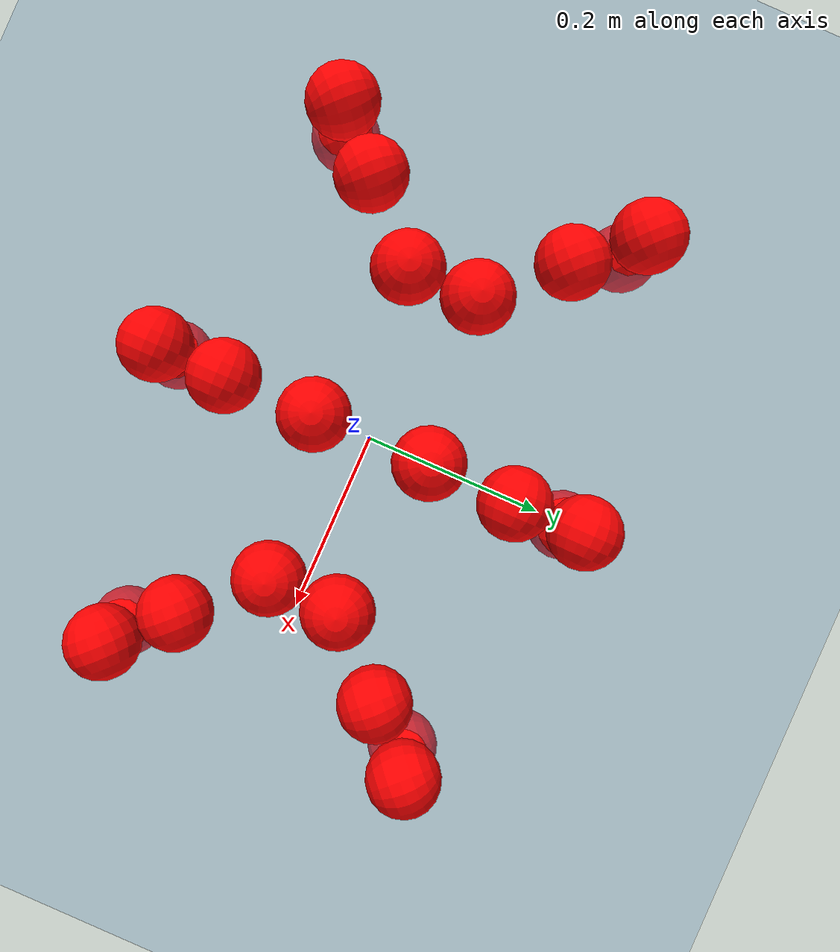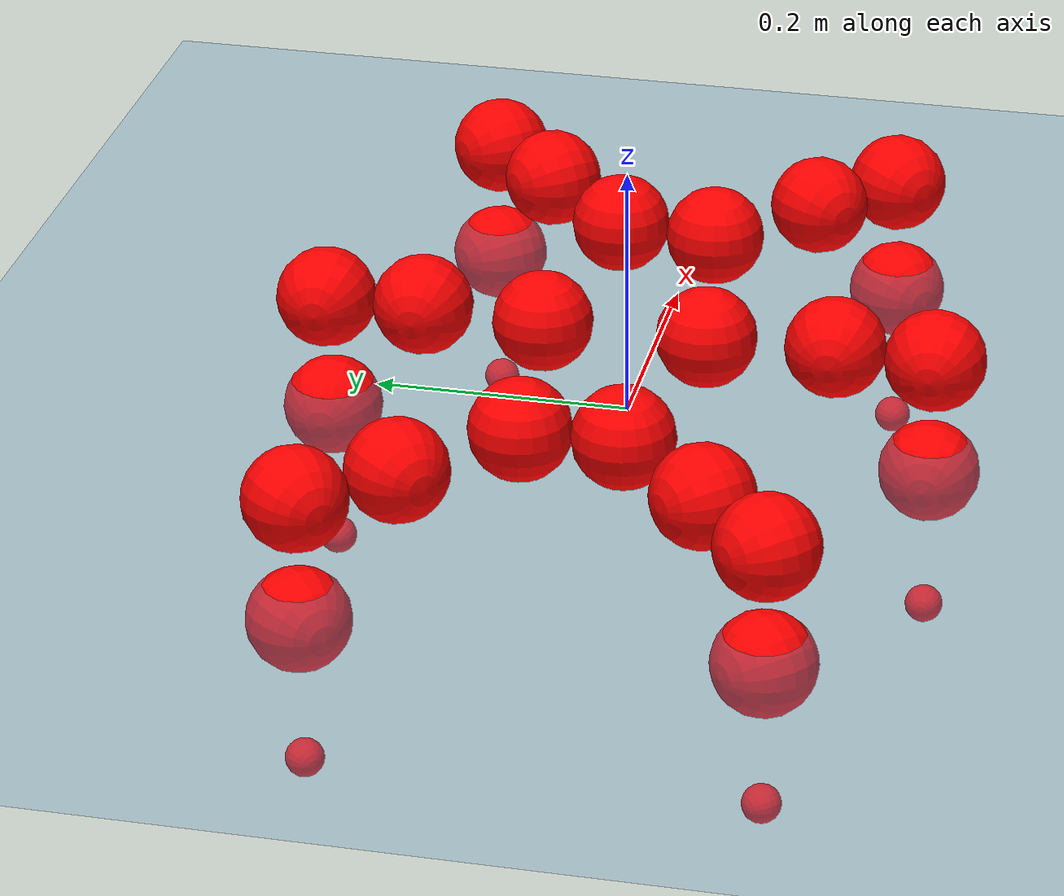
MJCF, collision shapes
<mujoco model="Golem">
  <compiler angle="radian" assetdir="assets" balanceinertia="true" inertiafromgeom="false"/>

  <option timestep="0.005" density="1.2" viscosity="2e-05"/>

  <size nkey="1"/>

  <visual>
    <quality shadowsize="8192"/>
    <map shadowclip="0.5"/>
  </visual>

  <default>
    <default class="/">
      <joint armature="0.01" damping="0.01" frictionloss="0.01"/>
      <geom contype="0" conaffinity="0" group="1" solref="-1000 -80"/>
      <site size="0.01 0.005 0.005" group="5"/>
      <general forcelimited="true" biastype="affine" gainprm="25" biasprm="0 -25 -0.5"/>
      <default class="visual">
        <geom type="mesh" group="2"/>
      </default>
      <default class="collision">
        <geom group="3"/>
      </default>
      <default class="foot">
        <geom size="0.01 0 0" condim="6" group="4" priority="1" solimp="0.015 1 0.01"/>
      </default>
      <default class="reward_collision_sphere">
        <geom group="5" rgba="1 0 0 1"/>
      </default>
    </default>
  </default>

  <asset>
    <texture type="skybox" colorspace="auto" name="//unnamed_texture_0" builtin="gradient" rgb1="0.95 0.95 0.95" rgb2="0.95 0.95 0.95" width="100" height="600"/>
    <texture type="2d" colorspace="auto" name="texplane" builtin="checker" rgb1="0.345 0.575 0.748" rgb2="0.345 0.575 0.748" markrgb="1 1 1" width="512" height="512"/>
    <material name="MatPlane" class="/" texture="texplane" texuniform="true" texrepeat="2 2" specular="0.9"/>
    <mesh name="body" class="/" file="body.stl" scale="0.001 0.001 0.001"/>
    <mesh name="coxa" class="/" file="coxa.stl" scale="0.001 0.001 0.001"/>
    <mesh name="femur" class="/" file="femur.stl" scale="0.001 0.001 0.001"/>
    <mesh name="tibia" class="/" file="tibia.stl" scale="0.001 0.001 0.001"/>
    <mesh name="tarsus" class="/" file="tarsus.stl" scale="0.001 0.001 0.001"/>
  </asset>

  <worldbody>
    <geom name="floor" class="/" size="100 100 0.125" type="plane" group="0" material="MatPlane"/>
    <light name="toplight_shadow" class="/" pos="0 0 5" dir="0.0990148 0.0990148 -0.990148" type="directional" ambient="0.04 0.04 0.04" diffuse="0.55 0.55 0.55" specular="0.12 0.12 0.12"/>
    <light name="toplight_fill" class="/" pos="0 0 5" dir="0.0990148 0.0990148 -0.990148" type="directional" castshadow="false" ambient="0.04 0.04 0.04" diffuse="0.3 0.3 0.3" specular="0.08 0.08 0.08"/>
    <body name="trunk" pos="2.09202e-05 0.00269218 0.00148284" quat="1 8.25677e-05 -0.000222324 -0.000141296">
      <inertial pos="-4.22946e-05 0.000524047 -0.00491191" quat="0.999999 -0.000288332 0.000598475 0.000981967" mass="3.71828" diaginertia="0.0173132 0.00234358 0.0151859"/>
      <joint name="//unnamed_joint_0" type="free"/>
      <geom name="//unnamed_geom_1" class="/" pos="0 0 0.0696023" quat="1 0 0 0" type="mesh" rgba="0.9 0.9 0.9 1" mesh="body"/>
      <site name="imu" class="/" pos="0.148141 -0.00895455 0.111813" size="0.00981093"/>
      <camera name="track" class="/" pos="0 -1.48488 0" quat="0.707107 0.707107 0 0" mode="trackcom"/>
      <camera name="ego_camera" class="/" pos="0.14473 0 0.108754" quat="-0.5 -0.5 0.5 0.5"/>
      <body name="coxa_RR" pos="-0.197603 -0.0597629 0.0728059" quat="0.382791 0.000714518 -0.000976525 -0.923834">
        <inertial pos="0.000316282 -0.00266479 0.0031201" quat="0.999987 -0.00271822 -6.20438e-05 -0.00424074" mass="0.19341" diaginertia="0.0169118 0.00224234 0.0151882"/>
        <joint name="coxa_joint_RR" class="/" pos="0 0 0" axis="-0.000353217 0.00446021 -0.99999" range="-3.09263 3.13984" armature="0.00990651" damping="0.00882016" frictionloss="0.010277"/>
        <geom name="//unnamed_geom_2" class="/" type="mesh" rgba="0.2 0.2 0.2 1" mesh="coxa"/>
        <geom name="//unnamed_geom_3" class="reward_collision_sphere" size="0.0392437" pos="-0.0333991 0 0"/>
        <body name="femur_RR" pos="0.0686425 0.000394723 -0.000474289" quat="0.499179 -0.499736 0.500463 0.500621">
          <inertial pos="-0.00247573 -0.000681726 0.000878097" quat="1 -7.0546e-06 -0.000173591 -0.000550051" mass="0.19253" diaginertia="0.0174638 0.002319 0.0156002"/>
          <joint name="femur_joint_RR" class="/" pos="0 0 0" axis="-0.000390057 0.000344247 -1" stiffness="0.00515815" range="-3.17665 3.16632" armature="0.00876023" damping="0.00347863" frictionloss="0.00971335"/>
          <geom name="//unnamed_geom_4" class="/" type="mesh" rgba="0.9 0.9 0.9 1" mesh="femur"/>
          <geom name="//unnamed_geom_5" class="reward_collision_sphere" size="0.0392437"/>
          <body name="tibia_RR" pos="0.0014151 -0.0800807 -0.000331375" quat="1.36913e-05 1 -4.24516e-05 8.76904e-06">
            <inertial pos="0.000663786 0.00104924 -0.00098536" quat="0.999982 0.00464615 -0.00312976 0.00224545" mass="0.185772" diaginertia="0.017211 0.00235381 0.0159213"/>
            <joint name="tibia_joint_RR" class="/" pos="0 0 0" axis="0.0105238 -0.00307078 0.99994" range="-3.15406 3.08922" armature="0.0103808" damping="0.0179733" frictionloss="0.00932294"/>
            <geom name="//unnamed_geom_6" class="/" type="mesh" rgba="0.2 0.2 0.2 1" mesh="tibia"/>
            <geom name="//unnamed_geom_7" class="reward_collision_sphere" size="0.0392437"/>
            <body name="tarsus_RR" pos="0.0976412 -0.00220068 -0.000943189" quat="1 -0.000282721 -4.91608e-05 -0.000188401">
              <inertial pos="0.0705397 0.0029583 -0.0026192" quat="0.500333 0.497047 0.502339 0.500267" mass="0.197642" diaginertia="0.0173458 0.00240524 0.0157406"/>
              <joint name="tarsus_joint_RR" class="/" pos="0 0 0" axis="-0.000420088 0.000788133 1" range="-3.0847 3.13283" armature="0.00968395" damping="0.0447334" frictionloss="0.0103019"/>
              <geom name="//unnamed_geom_8" class="/" type="mesh" rgba="0.9 0.9 0.9 1" mesh="tarsus"/>
              <geom name="foot_1" class="foot" size="0.00979661" pos="0.12469 0 0" quat="0 -0.707107 0 0.707107"/>
              <geom name="//unnamed_geom_10" class="reward_collision_sphere" size="0.0392437"/>
              <geom name="//unnamed_geom_11" class="reward_collision_sphere" size="0.0147164" pos="0.11968 0 0"/>
              <site name="foot_1" class="foot" pos="0.12469 0 0" quat="0 -0.707107 0 0.707107" size="0.00981093"/>
            </body>
          </body>
        </body>
      </body>
      <body name="coxa_RM" pos="0.000994486 -0.0974334 0.0680331" quat="0.707121 3.43237e-05 -0.000111925 -0.707093">
        <inertial pos="0.000821285 0.00089586 -0.000313932" quat="0.999997 -0.000430979 -0.00209688 0.00131825" mass="0.182571" diaginertia="0.0169106 0.00222005 0.0150574"/>
        <joint name="coxa_joint_RM" class="/" pos="0 0 0" axis="6.98482e-05 6.67192e-05 -1" range="-3.11843 3.15243" armature="0.00977839" damping="0.00802588" frictionloss="0.00854354"/>
        <geom name="//unnamed_geom_12" class="/" type="mesh" rgba="0.2 0.2 0.2 1" mesh="coxa"/>
        <geom name="//unnamed_geom_13" class="reward_collision_sphere" size="0.0392437" pos="-0.0333991 0 0"/>
        <body name="femur_RM" pos="0.0662163 0.000975052 0.00160784" quat="0.500488 -0.499844 0.50006 0.499608">
          <inertial pos="-6.57908e-05 -0.00159007 0.00232327" quat="0.999988 -0.0039213 -0.00215253 0.00175358" mass="0.190743" diaginertia="0.0166439 0.00228315 0.0153565"/>
          <joint name="femur_joint_RM" class="/" pos="0 0 0" axis="0.00346708 -0.00433807 -0.999985" range="-3.15801 3.11854" armature="0.0101278" damping="0" frictionloss="0.00959943"/>
          <geom name="//unnamed_geom_14" class="/" type="mesh" rgba="0.9 0.9 0.9 1" mesh="femur"/>
          <geom name="//unnamed_geom_15" class="reward_collision_sphere" size="0.0392437"/>
          <body name="tibia_RM" pos="0.00260426 -0.0769103 -0.00121075" quat="6.65276e-05 1 3.30689e-05 -4.57111e-05">
            <inertial pos="-0.00270094 -0.00277766 -0.000226905" quat="0.999912 0.00974368 0.00834307 -0.00344841" mass="0.190601" diaginertia="0.0170719 0.00226811 0.014762"/>
            <joint name="tibia_joint_RM" class="/" pos="0 0 0" axis="-0.000845171 0.00340858 0.999994" range="-3.13468 3.15422" armature="0.0102864" damping="0.0231293" frictionloss="0.0104933"/>
            <geom name="//unnamed_geom_16" class="/" type="mesh" rgba="0.2 0.2 0.2 1" mesh="tibia"/>
            <geom name="//unnamed_geom_17" class="reward_collision_sphere" size="0.0392437"/>
            <body name="tarsus_RM" pos="0.0957893 -0.00177261 -0.000257844" quat="1 6.47407e-05 0.000288815 0.000212115">
              <inertial pos="0.066696 -0.000336768 0.00119295" quat="0.499069 0.498506 0.501583 0.500836" mass="0.193276" diaginertia="0.0175257 0.002338 0.015593"/>
              <joint name="tarsus_joint_RM" class="/" pos="0 0 0" axis="0.00208989 0.00278778 0.999994" range="-3.14149 3.12641" armature="0.008354" damping="0.000488729" frictionloss="0.00947791"/>
              <geom name="//unnamed_geom_18" class="/" type="mesh" rgba="0.9 0.9 0.9 1" mesh="tarsus"/>
              <geom name="foot_2" class="foot" size="0.00904282" pos="0.12469 0 0" quat="0 -0.707107 0 0.707107"/>
              <geom name="//unnamed_geom_20" class="reward_collision_sphere" size="0.0392437"/>
              <geom name="//unnamed_geom_21" class="reward_collision_sphere" size="0.0147164" pos="0.11968 0 0"/>
              <site name="foot_2" class="foot" pos="0.12469 0 0" quat="0 -0.707107 0 0.707107" size="0.00981093"/>
            </body>
          </body>
        </body>
      </body>
      <body name="coxa_RF" pos="0.195515 -0.0620844 0.0693189" quat="0.923828 -4.01859e-05 -8.27346e-05 -0.382807">
        <inertial pos="0.00278319 0.000101617 3.68172e-05" quat="0.999991 -0.00163238 0.00244201 -0.00312648" mass="0.187145" diaginertia="0.0176084 0.00221698 0.0146459"/>
        <joint name="coxa_joint_RF" class="/" pos="0 0 0" axis="-0.00342156 -0.00593773 -0.999977" range="-3.17065 3.15317" armature="0.00938245" damping="0.0105704" frictionloss="0.00999869"/>
        <geom name="//unnamed_geom_22" class="/" type="mesh" rgba="0.2 0.2 0.2 1" mesh="coxa"/>
        <geom name="//unnamed_geom_23" class="reward_collision_sphere" size="0.0392437" pos="-0.0333991 0 0"/>
        <body name="femur_RF" pos="0.0679251 -0.00159258 0.000755472" quat="0.499799 -0.50045 0.499762 0.499989">
          <inertial pos="0.000387383 0.000949174 -0.00225195" quat="0.999993 0.00347513 -0.00104598 -0.000412357" mass="0.18594" diaginertia="0.0171906 0.00235265 0.0151661"/>
          <joint name="femur_joint_RF" class="/" pos="0 0 0" axis="0.000696289 0.000409261 -1" range="-3.08717 3.13613" armature="0.0108064" damping="0" frictionloss="0.00973802"/>
          <geom name="//unnamed_geom_24" class="/" type="mesh" rgba="0.9 0.9 0.9 1" mesh="femur"/>
          <geom name="//unnamed_geom_25" class="reward_collision_sphere" size="0.0392437"/>
          <body name="tibia_RF" pos="0.000666166 -0.0795208 0.000162531" quat="0.000188862 1 9.44477e-05 1.90654e-05">
            <inertial pos="-0.00033752 0.00208267 0.000617799" quat="0.999994 0.0017436 0.000105891 0.0030498" mass="0.187884" diaginertia="0.0176297 0.00221355 0.015651"/>
            <joint name="tibia_joint_RF" class="/" pos="0 0 0" axis="-0.00108578 0.00446954 0.999989" range="-3.15031 3.15944" armature="0.0099566" damping="0.00635926" frictionloss="0.00860537"/>
            <geom name="//unnamed_geom_26" class="/" type="mesh" rgba="0.2 0.2 0.2 1" mesh="tibia"/>
            <geom name="//unnamed_geom_27" class="reward_collision_sphere" size="0.0392437"/>
            <body name="tarsus_RF" pos="0.097556 0.00169331 0.00156174" quat="0.999999 -0.000962674 -0.000933408 -0.000338568">
              <inertial pos="0.0650878 -0.00269039 0.000947315" quat="0.508656 0.493423 0.503641 0.494114" mass="0.182905" diaginertia="0.0176593 0.00217938 0.0151722"/>
              <joint name="tarsus_joint_RF" class="/" pos="0 0 0" axis="0.0117171 0.00126792 0.999931" stiffness="0.000205712" range="-3.0861 3.14988" armature="0.0109397" damping="0.00292991" frictionloss="0.00970489"/>
              <geom name="//unnamed_geom_28" class="/" type="mesh" rgba="0.9 0.9 0.9 1" mesh="tarsus"/>
              <geom name="foot_3" class="foot" size="0.00998181" pos="0.12469 0 0" quat="0 -0.707107 0 0.707107"/>
              <geom name="//unnamed_geom_30" class="reward_collision_sphere" size="0.0392437"/>
              <geom name="//unnamed_geom_31" class="reward_collision_sphere" size="0.0147164" pos="0.11968 0 0"/>
              <site name="foot_3" class="foot" pos="0.12469 0 0" quat="0 -0.707107 0 0.707107" size="0.00981093"/>
            </body>
          </body>
        </body>
      </body>
      <body name="coxa_LR" pos="-0.198839 0.0645509 0.0713921" quat="0.382682 -1.49864e-05 4.29663e-05 0.92388">
        <inertial pos="0.000802843 -0.00292336 5.6033e-05" quat="0.999926 -0.00898864 -0.000202645 -0.00819577" mass="0.18137" diaginertia="0.0163246 0.00225411 0.0148043"/>
        <joint name="coxa_joint_LR" class="/" pos="0 0 0" axis="-0.00734468 0.00333327 -0.999967" range="-3.14929 3.19243" armature="0.00847939" damping="0.0077231" frictionloss="0.010296"/>
        <geom name="//unnamed_geom_32" class="/" type="mesh" rgba="0.2 0.2 0.2 1" mesh="coxa"/>
        <geom name="//unnamed_geom_33" class="reward_collision_sphere" size="0.0392437" pos="-0.0333991 0 0"/>
        <body name="femur_LR" pos="0.0697496 -0.00196997 -0.0032182" quat="0.500223 -0.500064 0.500603 0.499109">
          <inertial pos="-0.00036609 -0.000480221 -0.00125959" quat="0.999909 0.012202 -0.00571823 0.000983028" mass="0.187798" diaginertia="0.0173354 0.00228381 0.0158946"/>
          <joint name="femur_joint_LR" class="/" pos="0 0 0" axis="-0.00504579 -0.00261515 0.999984" range="-3.08792 3.09008" armature="0.010429" damping="0" frictionloss="0.0101591"/>
          <geom name="//unnamed_geom_34" class="/" type="mesh" rgba="0.9 0.9 0.9 1" mesh="femur"/>
          <geom name="//unnamed_geom_35" class="reward_collision_sphere" size="0.0392437"/>
          <body name="tibia_LR" pos="-0.000670277 -0.0822136 -0.00313081" quat="-8.43134e-05 1 -0.000129097 -0.000519902">
            <inertial pos="0.000709693 -0.00234927 0.00232927" quat="0.999974 0.00498117 0.00503349 0.0015725" mass="0.190399" diaginertia="0.0176251 0.00228687 0.0152644"/>
            <joint name="tibia_joint_LR" class="/" pos="0 0 0" axis="0.00194675 0.000596993 -0.999998" range="-3.18926 3.16398" armature="0.00918152" damping="0" frictionloss="0.010608"/>
            <geom name="//unnamed_geom_36" class="/" type="mesh" rgba="0.2 0.2 0.2 1" mesh="tibia"/>
            <geom name="//unnamed_geom_37" class="reward_collision_sphere" size="0.0392437"/>
            <body name="tarsus_LR" pos="0.100565 0.000602635 0.000423134" quat="0.999999 0.000316491 0.000985942 0.000779283">
              <inertial pos="0.0703319 0.000845519 -0.000284472" quat="0.507441 0.498555 0.495741 0.498185" mass="0.193961" diaginertia="0.0171011 0.00227136 0.0152281"/>
              <joint name="tarsus_joint_LR" class="/" pos="0 0 0" axis="0.000383991 -0.00499552 -0.999987" range="-3.19219 3.14501" armature="0.00991252" damping="0.0259939" frictionloss="0.00849249"/>
              <geom name="//unnamed_geom_38" class="/" type="mesh" rgba="0.9 0.9 0.9 1" mesh="tarsus"/>
              <geom name="foot_4" class="foot" size="0.00989434" pos="0.12469 0 0" quat="0.707107 0 -0.707107 0"/>
              <geom name="//unnamed_geom_40" class="reward_collision_sphere" size="0.0392437"/>
              <geom name="//unnamed_geom_41" class="reward_collision_sphere" size="0.0147164" pos="0.11968 0 0"/>
              <site name="foot_4" class="foot" pos="0.12469 0 0" quat="0.707107 0 -0.707107 0" size="0.00981093"/>
            </body>
          </body>
        </body>
      </body>
      <body name="coxa_LM" pos="-0.000578977 0.0971834 0.0693449" quat="0.707143 0.000232886 0.00034058 0.70707">
        <inertial pos="-0.00212059 0.000598735 -0.00183006" quat="0.999999 -0.000229747 -0.000921529 -0.00132578" mass="0.186187" diaginertia="0.0164515 0.00216668 0.0156319"/>
        <joint name="coxa_joint_LM" class="/" pos="0 0 0" axis="0.00314367 -0.00444614 -0.999985" range="-3.14058 3.14378" armature="0.0111592" damping="0.00146799" frictionloss="0.00894615"/>
        <geom name="//unnamed_geom_42" class="/" type="mesh" rgba="0.2 0.2 0.2 1" mesh="coxa"/>
        <geom name="//unnamed_geom_43" class="reward_collision_sphere" size="0.0392437" pos="-0.0333991 0 0"/>
        <body name="femur_LM" pos="0.0620327 -0.00231018 0.00291207" quat="0.499928 -0.500133 0.500351 0.499587">
          <inertial pos="0.00252286 0.000594619 0.00259515" quat="0.999997 -0.00239774 0.000112555 0.000421552" mass="0.188841" diaginertia="0.0172312 0.00226624 0.0152067"/>
          <joint name="femur_joint_LM" class="/" pos="0 0 0" axis="-0.00361464 0.00114319 0.999993" range="-3.15542 3.0919" armature="0.0100874" damping="0" frictionloss="0.0107488"/>
          <geom name="//unnamed_geom_44" class="/" type="mesh" rgba="0.9 0.9 0.9 1" mesh="femur"/>
          <geom name="//unnamed_geom_45" class="reward_collision_sphere" size="0.0392437"/>
          <body name="tibia_LM" pos="0.000405744 -0.0769319 0.00177083" quat="-3.03211e-05 1 -0.000118859 -7.14114e-05">
            <inertial pos="-0.00120123 -0.00274324 0.00265537" quat="0.999917 -0.00363408 0.00533619 -0.0111262" mass="0.184047" diaginertia="0.0171443 0.00221866 0.0147941"/>
            <joint name="tibia_joint_LM" class="/" pos="0 0 0" axis="0.00446775 0.0100329 -0.99994" range="-3.14789 3.08495" armature="0.00965722" damping="0" frictionloss="0.0099557"/>
            <geom name="//unnamed_geom_46" class="/" type="mesh" rgba="0.2 0.2 0.2 1" mesh="tibia"/>
            <geom name="//unnamed_geom_47" class="reward_collision_sphere" size="0.0392437"/>
            <body name="tarsus_LM" pos="0.0961687 -0.00152008 0.00206237" quat="1 7.03588e-05 3.84007e-05 0.000137285">
              <inertial pos="0.0654781 0.000746643 -0.00259601" quat="0.509651 0.50221 0.491707 0.496251" mass="0.194301" diaginertia="0.017236 0.00217931 0.0147755"/>
              <joint name="tarsus_joint_LM" class="/" pos="0 0 0" axis="0.00167616 0.0117388 -0.99993" range="-3.14271 3.0852" armature="0.00972273" damping="0.00388214" frictionloss="0.00989003"/>
              <geom name="//unnamed_geom_48" class="/" type="mesh" rgba="0.9 0.9 0.9 1" mesh="tarsus"/>
              <geom name="foot_5" class="foot" size="0.0100238" pos="0.12469 0 0" quat="0.707107 0 -0.707107 0"/>
              <geom name="//unnamed_geom_50" class="reward_collision_sphere" size="0.0392437"/>
              <geom name="//unnamed_geom_51" class="reward_collision_sphere" size="0.0147164" pos="0.11968 0 0"/>
              <site name="foot_5" class="foot" pos="0.12469 0 0" quat="0.707107 0 -0.707107 0" size="0.00981093"/>
            </body>
          </body>
        </body>
      </body>
      <body name="coxa_LF" pos="0.198479 0.0626659 0.0713634" quat="0.924277 0.000699066 -0.000371029 0.381722">
        <inertial pos="-0.000482522 0.00104978 0.000160178" quat="0.999917 0.0041429 -0.0102379 -0.00666146" mass="0.192793" diaginertia="0.0167563 0.00230311 0.0145275"/>
        <joint name="coxa_joint_LF" class="/" pos="0 0 0" axis="0.00249029 -0.00406761 -0.999989" range="-3.13985 3.13507" armature="0.00975639" damping="0.00438207" frictionloss="0.00929202"/>
        <geom name="//unnamed_geom_52" class="/" type="mesh" rgba="0.2 0.2 0.2 1" mesh="coxa"/>
        <geom name="//unnamed_geom_53" class="reward_collision_sphere" size="0.0392437" pos="-0.0333991 0 0"/>
        <body name="femur_LF" pos="0.0668354 0.00165977 0.000517589" quat="0.500099 -0.49971 0.499986 0.500205">
          <inertial pos="0.00269877 9.32744e-05 0.0026644" quat="0.999999 -0.0002021 0.00093331 0.00120577" mass="0.185021" diaginertia="0.01643 0.00225186 0.0146143"/>
          <joint name="femur_joint_LF" class="/" pos="0 0 0" axis="-0.00105375 0.00517077 0.999986" range="-3.13316 3.18984" armature="0.0109027" damping="0.000246491" frictionloss="0.00996666"/>
          <geom name="//unnamed_geom_54" class="/" type="mesh" rgba="0.9 0.9 0.9 1" mesh="femur"/>
          <geom name="//unnamed_geom_55" class="reward_collision_sphere" size="0.0392437"/>
          <body name="tibia_LF" pos="0.00313124 -0.0822381 -0.000499864" quat="0.000659903 1 0.000270954 0.00066901">
            <inertial pos="0.000782382 -0.000675548 0.000275194" quat="0.999997 -0.00152328 0.00169246 -0.00111166" mass="0.189003" diaginertia="0.0169815 0.00226552 0.0151652"/>
            <joint name="tibia_joint_LF" class="/" pos="0 0 0" axis="0.004797 0.00924586 -0.999946" range="-3.13898 3.17869" armature="0.00846927" damping="0.00599536" frictionloss="0.00952018"/>
            <geom name="//unnamed_geom_56" class="/" type="mesh" rgba="0.2 0.2 0.2 1" mesh="tibia"/>
            <geom name="//unnamed_geom_57" class="reward_collision_sphere" size="0.0392437"/>
            <body name="tarsus_LF" pos="0.0997554 0.00150859 -0.00142935" quat="1 -4.57199e-05 -5.92461e-05 -8.46755e-05">
              <inertial pos="0.064806 0.000329502 -0.000477693" quat="0.500182 0.4986 0.500458 0.500757" mass="0.185451" diaginertia="0.0171382 0.00224791 0.0153859"/>
              <joint name="tarsus_joint_LF" class="/" pos="0 0 0" axis="0.00321104 0.00510855 -0.999982" stiffness="0.0207098" range="-3.19276 3.19228" armature="0.00992098" damping="0" frictionloss="0.00973821"/>
              <geom name="//unnamed_geom_58" class="/" type="mesh" rgba="0.9 0.9 0.9 1" mesh="tarsus"/>
              <geom name="foot_6" class="foot" size="0.0100088" pos="0.12469 0 0" quat="0.707107 0 -0.707107 0"/>
              <geom name="//unnamed_geom_60" class="reward_collision_sphere" size="0.0392437"/>
              <geom name="//unnamed_geom_61" class="reward_collision_sphere" size="0.0147164" pos="0.11968 0 0"/>
              <site name="foot_6" class="foot" pos="0.12469 0 0" quat="0.707107 0 -0.707107 0" size="0.00981093"/>
            </body>
          </body>
        </body>
      </body>
    </body>
  </worldbody>

  <contact>
    <pair class="/" geom1="floor" geom2="foot_1" name="//unnamed_contact_0"/>
    <pair class="/" geom1="floor" geom2="foot_2" name="//unnamed_contact_1"/>
    <pair class="/" geom1="floor" geom2="foot_3" name="//unnamed_contact_2"/>
    <pair class="/" geom1="floor" geom2="foot_4" name="//unnamed_contact_3"/>
    <pair class="/" geom1="floor" geom2="foot_5" name="//unnamed_contact_4"/>
    <pair class="/" geom1="floor" geom2="foot_6" name="//unnamed_contact_5"/>
  </contact>

  <actuator>
    <general name="coxa_joint_RR" class="/" joint="coxa_joint_RR" forcerange="-7.23108 7.23108" gainprm="23.4017" biasprm="0 -23.4017 -0.536669"/>
    <general name="femur_joint_RR" class="/" joint="femur_joint_RR" forcerange="-6.9199 6.9199" gainprm="23.4017" biasprm="0 -23.4017 -0.536669"/>
    <general name="tibia_joint_RR" class="/" joint="tibia_joint_RR" forcerange="-6.44286 6.44286" gainprm="23.4017" biasprm="0 -23.4017 -0.536669"/>
    <general name="tarsus_joint_RR" class="/" joint="tarsus_joint_RR" forcerange="-6.69626 6.69626" gainprm="23.4017" biasprm="0 -23.4017 -0.536669"/>
    <general name="coxa_joint_RM" class="/" joint="coxa_joint_RM" forcerange="-7.1591 7.1591" gainprm="23.4017" biasprm="0 -23.4017 -0.536669"/>
    <general name="femur_joint_RM" class="/" joint="femur_joint_RM" forcerange="-7.24964 7.24964" gainprm="23.4017" biasprm="0 -23.4017 -0.536669"/>
    <general name="tibia_joint_RM" class="/" joint="tibia_joint_RM" forcerange="-6.4707 6.4707" gainprm="23.4017" biasprm="0 -23.4017 -0.536669"/>
    <general name="tarsus_joint_RM" class="/" joint="tarsus_joint_RM" forcerange="-7.34632 7.34632" gainprm="23.4017" biasprm="0 -23.4017 -0.536669"/>
    <general name="coxa_joint_RF" class="/" joint="coxa_joint_RF" forcerange="-7.10677 7.10677" gainprm="23.4017" biasprm="0 -23.4017 -0.536669"/>
    <general name="femur_joint_RF" class="/" joint="femur_joint_RF" forcerange="-7.85354 7.85354" gainprm="23.4017" biasprm="0 -23.4017 -0.536669"/>
    <general name="tibia_joint_RF" class="/" joint="tibia_joint_RF" forcerange="-7.40419 7.40419" gainprm="23.4017" biasprm="0 -23.4017 -0.536669"/>
    <general name="tarsus_joint_RF" class="/" joint="tarsus_joint_RF" forcerange="-7.85643 7.85643" gainprm="23.4017" biasprm="0 -23.4017 -0.536669"/>
    <general name="coxa_joint_LR" class="/" joint="coxa_joint_LR" forcerange="-6.47695 6.47695" gainprm="23.4017" biasprm="0 -23.4017 -0.536669"/>
    <general name="femur_joint_LR" class="/" joint="femur_joint_LR" forcerange="-7.13861 7.13861" gainprm="23.4017" biasprm="0 -23.4017 -0.536669"/>
    <general name="tibia_joint_LR" class="/" joint="tibia_joint_LR" forcerange="-7.55058 7.55058" gainprm="23.4017" biasprm="0 -23.4017 -0.536669"/>
    <general name="tarsus_joint_LR" class="/" joint="tarsus_joint_LR" forcerange="-7.14628 7.14628" gainprm="23.4017" biasprm="0 -23.4017 -0.536669"/>
    <general name="coxa_joint_LM" class="/" joint="coxa_joint_LM" forcerange="-7.35274 7.35274" gainprm="23.4017" biasprm="0 -23.4017 -0.536669"/>
    <general name="femur_joint_LM" class="/" joint="femur_joint_LM" forcerange="-7.12044 7.12044" gainprm="23.4017" biasprm="0 -23.4017 -0.536669"/>
    <general name="tibia_joint_LM" class="/" joint="tibia_joint_LM" forcerange="-6.43597 6.43597" gainprm="23.4017" biasprm="0 -23.4017 -0.536669"/>
    <general name="tarsus_joint_LM" class="/" joint="tarsus_joint_LM" forcerange="-6.60654 6.60654" gainprm="23.4017" biasprm="0 -23.4017 -0.536669"/>
    <general name="coxa_joint_LF" class="/" joint="coxa_joint_LF" forcerange="-7.0817 7.0817" gainprm="23.4017" biasprm="0 -23.4017 -0.536669"/>
    <general name="femur_joint_LF" class="/" joint="femur_joint_LF" forcerange="-6.45899 6.45899" gainprm="23.4017" biasprm="0 -23.4017 -0.536669"/>
    <general name="tibia_joint_LF" class="/" joint="tibia_joint_LF" forcerange="-7.3043 7.3043" gainprm="23.4017" biasprm="0 -23.4017 -0.536669"/>
    <general name="tarsus_joint_LF" class="/" joint="tarsus_joint_LF" forcerange="-7.14671 7.14671" gainprm="23.4017" biasprm="0 -23.4017 -0.536669"/>
  </actuator>

  <sensor>
    <gyro site="imu" name="imu_angular_velocity"/>
    <velocimeter site="imu" name="imu_linear_velocity"/>
    <framelinvel objtype="site" objname="foot_1" name="foot_1_global_linear_velocity"/>
    <framelinvel objtype="site" objname="foot_2" name="foot_2_global_linear_velocity"/>
    <framelinvel objtype="site" objname="foot_3" name="foot_3_global_linear_velocity"/>
    <framelinvel objtype="site" objname="foot_4" name="foot_4_global_linear_velocity"/>
    <framelinvel objtype="site" objname="foot_5" name="foot_5_global_linear_velocity"/>
    <framelinvel objtype="site" objname="foot_6" name="foot_6_global_linear_velocity"/>
  </sensor>

  <keyframe>
    <key name="home" qpos="0 0 0.1457 1 0 0 0 0 0 0 0 0 0 0 0 0 0 0 0 0 0 0 0 0 0 0 0 0 0 0 0"/>
  </keyframe>
</mujoco>
